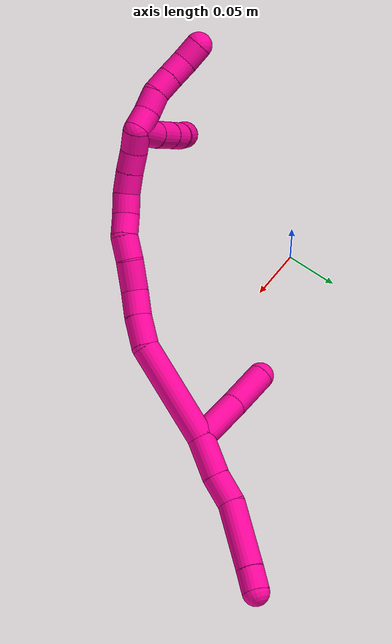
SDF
<sdf version="1.7">
 <world name="default">
  <model name="18">
   <static>0</static>
   <link name="18">
    <collision name="collision-cylinder-e_1_2_8">
     <pose>-0.00115 -0.002674 -0.018708 2.99964 -0.060769 -0.808</pose>
     <geometry><cylinder><radius>0.0125</radius><length>0.037866</length></cylinder></geometry>
     <surface>
      <friction><ode><mu>1.16</mu><mu2>1.16</mu2><slip1>0</slip1><slip2>0</slip2></ode></friction>
      <contact><ode><kp>1e+06</kp><kd>1</kd><max_vel>0</max_vel><min_depth>0.001</min_depth></ode></contact>
     </surface>
    </collision>
    <visual name="visual-cylinder-e_1_2_8">
     <pose>-0.00115 -0.002674 -0.018708 2.99964 -0.060769 -0.808</pose>
     <geometry><cylinder><radius>0.0125</radius><length>0.037866</length></cylinder></geometry>
     <material><ambient>1 0.007843 0.615686 1</ambient></material>
    </visual>
    <collision name="collision-cylinder-e_2_8_9">
     <pose>-0.00505 -0.006101 -0.051113 3.08658 -0.197869 -2.60085</pose>
     <geometry><cylinder><radius>0.0125</radius><length>0.027982</length></cylinder></geometry>
     <surface>
      <friction><ode><mu>1.16</mu><mu2>1.16</mu2><slip1>0</slip1><slip2>0</slip2></ode></friction>
      <contact><ode><kp>1e+06</kp><kd>1</kd><max_vel>0</max_vel><min_depth>0.001</min_depth></ode></contact>
     </surface>
    </collision>
    <visual name="visual-cylinder-e_2_8_9">
     <pose>-0.00505 -0.006101 -0.051113 3.08658 -0.197869 -2.60085</pose>
     <geometry><cylinder><radius>0.0125</radius><length>0.027982</length></cylinder></geometry>
     <material><ambient>1 0.007843 0.615686 1</ambient></material>
    </visual>
    <collision name="collision-cylinder-e_3_9_10">
     <pose>-0.005149 -0.00679 -0.095895 -3.13949 0.085092 -3.09219</pose>
     <geometry><cylinder><radius>0.0125</radius><length>0.062396</length></cylinder></geometry>
     <surface>
      <friction><ode><mu>1.16</mu><mu2>1.16</mu2><slip1>0</slip1><slip2>0</slip2></ode></friction>
      <contact><ode><kp>1e+06</kp><kd>1</kd><max_vel>0</max_vel><min_depth>0.001</min_depth></ode></contact>
     </surface>
    </collision>
    <visual name="visual-cylinder-e_3_9_10">
     <pose>-0.005149 -0.00679 -0.095895 -3.13949 0.085092 -3.09219</pose>
     <geometry><cylinder><radius>0.0125</radius><length>0.062396</length></cylinder></geometry>
     <material><ambient>1 0.007843 0.615686 1</ambient></material>
    </visual>
    <collision name="collision-cylinder-e_4_10_6">
     <pose>-0.001461 -0.006984 -0.137806 3.1176 0.095381 2.64904</pose>
     <geometry><cylinder><radius>0.0125</radius><length>0.021756</length></cylinder></geometry>
     <surface>
      <friction><ode><mu>1.16</mu><mu2>1.16</mu2><slip1>0</slip1><slip2>0</slip2></ode></friction>
      <contact><ode><kp>1e+06</kp><kd>1</kd><max_vel>0</max_vel><min_depth>0.001</min_depth></ode></contact>
     </surface>
    </collision>
    <visual name="visual-cylinder-e_4_10_6">
     <pose>-0.001461 -0.006984 -0.137806 3.1176 0.095381 2.64904</pose>
     <geometry><cylinder><radius>0.0125</radius><length>0.021756</length></cylinder></geometry>
     <material><ambient>1 0.007843 0.615686 1</ambient></material>
    </visual>
    <collision name="collision-cylinder-e_1_2_11">
     <pose>-0.022681 -0.00921 0.014032 0.580831 -0.933712 -0.299018</pose>
     <geometry><cylinder><radius>0.0125</radius><length>0.056432</length></cylinder></geometry>
     <surface>
      <friction><ode><mu>1.16</mu><mu2>1.16</mu2><slip1>0</slip1><slip2>0</slip2></ode></friction>
      <contact><ode><kp>1e+06</kp><kd>1</kd><max_vel>0</max_vel><min_depth>0.001</min_depth></ode></contact>
     </surface>
    </collision>
    <visual name="visual-cylinder-e_1_2_11">
     <pose>-0.022681 -0.00921 0.014032 0.580831 -0.933712 -0.299018</pose>
     <geometry><cylinder><radius>0.0125</radius><length>0.056432</length></cylinder></geometry>
     <material><ambient>1 0.007843 0.615686 1</ambient></material>
    </visual>
    <collision name="collision-cylinder-e_2_11_5">
     <pose>-0.063867 -0.020339 0.039395 0.167822 -1.01502 -0.093476</pose>
     <geometry><cylinder><radius>0.0125</radius><length>0.043568</length></cylinder></geometry>
     <surface>
      <friction><ode><mu>1.16</mu><mu2>1.16</mu2><slip1>0</slip1><slip2>0</slip2></ode></friction>
      <contact><ode><kp>1e+06</kp><kd>1</kd><max_vel>0</max_vel><min_depth>0.001</min_depth></ode></contact>
     </surface>
    </collision>
    <visual name="visual-cylinder-e_2_11_5">
     <pose>-0.063867 -0.020339 0.039395 0.167822 -1.01502 -0.093476</pose>
     <geometry><cylinder><radius>0.0125</radius><length>0.043568</length></cylinder></geometry>
     <material><ambient>1 0.007843 0.615686 1</ambient></material>
    </visual>
    <collision name="collision-cylinder-e_1_2_12">
     <pose>0.012545 0.008599 0.045321 -0.187511 0.265524 -0.025114</pose>
     <geometry><cylinder><radius>0.0125</radius><length>0.095611</length></cylinder></geometry>
     <surface>
      <friction><ode><mu>1.16</mu><mu2>1.16</mu2><slip1>0</slip1><slip2>0</slip2></ode></friction>
      <contact><ode><kp>1e+06</kp><kd>1</kd><max_vel>0</max_vel><min_depth>0.001</min_depth></ode></contact>
     </surface>
    </collision>
    <visual name="visual-cylinder-e_1_2_12">
     <pose>0.012545 0.008599 0.045321 -0.187511 0.265524 -0.025114</pose>
     <geometry><cylinder><radius>0.0125</radius><length>0.095611</length></cylinder></geometry>
     <material><ambient>1 0.007843 0.615686 1</ambient></material>
    </visual>
    <collision name="collision-cylinder-e_2_12_13">
     <pose>0.024 0.019189 0.104831 -0.139345 -0.075882 0.005298</pose>
     <geometry><cylinder><radius>0.0125</radius><length>0.028737</length></cylinder></geometry>
     <surface>
      <friction><ode><mu>1.16</mu><mu2>1.16</mu2><slip1>0</slip1><slip2>0</slip2></ode></friction>
      <contact><ode><kp>1e+06</kp><kd>1</kd><max_vel>0</max_vel><min_depth>0.001</min_depth></ode></contact>
     </surface>
    </collision>
    <visual name="visual-cylinder-e_2_12_13">
     <pose>0.024 0.019189 0.104831 -0.139345 -0.075882 0.005298</pose>
     <geometry><cylinder><radius>0.0125</radius><length>0.028737</length></cylinder></geometry>
     <material><ambient>1 0.007843 0.615686 1</ambient></material>
    </visual>
    <collision name="collision-cylinder-e_3_13_14">
     <pose>0.020959 0.023508 0.130741 -0.19616 -0.161882 0.015963</pose>
     <geometry><cylinder><radius>0.0125</radius><length>0.024219</length></cylinder></geometry>
     <surface>
      <friction><ode><mu>1.16</mu><mu2>1.16</mu2><slip1>0</slip1><slip2>0</slip2></ode></friction>
      <contact><ode><kp>1e+06</kp><kd>1</kd><max_vel>0</max_vel><min_depth>0.001</min_depth></ode></contact>
     </surface>
    </collision>
    <visual name="visual-cylinder-e_3_13_14">
     <pose>0.020959 0.023508 0.130741 -0.19616 -0.161882 0.015963</pose>
     <geometry><cylinder><radius>0.0125</radius><length>0.024219</length></cylinder></geometry>
     <material><ambient>1 0.007843 0.615686 1</ambient></material>
    </visual>
    <collision name="collision-cylinder-e_4_14_15">
     <pose>0.01824 0.03232 0.155127 -0.473147 -0.053911 0.013</pose>
     <geometry><cylinder><radius>0.0125</radius><length>0.028496</length></cylinder></geometry>
     <surface>
      <friction><ode><mu>1.16</mu><mu2>1.16</mu2><slip1>0</slip1><slip2>0</slip2></ode></friction>
      <contact><ode><kp>1e+06</kp><kd>1</kd><max_vel>0</max_vel><min_depth>0.001</min_depth></ode></contact>
     </surface>
    </collision>
    <visual name="visual-cylinder-e_4_14_15">
     <pose>0.01824 0.03232 0.155127 -0.473147 -0.053911 0.013</pose>
     <geometry><cylinder><radius>0.0125</radius><length>0.028496</length></cylinder></geometry>
     <material><ambient>1 0.007843 0.615686 1</ambient></material>
    </visual>
    <collision name="collision-cylinder-e_5_15_16">
     <pose>0.017001 0.042225 0.178504 -0.309163 -0.041902 0.00653</pose>
     <geometry><cylinder><radius>0.0125</radius><length>0.022511</length></cylinder></geometry>
     <surface>
      <friction><ode><mu>1.16</mu><mu2>1.16</mu2><slip1>0</slip1><slip2>0</slip2></ode></friction>
      <contact><ode><kp>1e+06</kp><kd>1</kd><max_vel>0</max_vel><min_depth>0.001</min_depth></ode></contact>
     </surface>
    </collision>
    <visual name="visual-cylinder-e_5_15_16">
     <pose>0.017001 0.042225 0.178504 -0.309163 -0.041902 0.00653</pose>
     <geometry><cylinder><radius>0.0125</radius><length>0.022511</length></cylinder></geometry>
     <material><ambient>1 0.007843 0.615686 1</ambient></material>
    </visual>
    <collision name="collision-cylinder-e_6_16_17">
     <pose>0.012916 0.04769 0.198504 -0.216578 -0.363106 0.039909</pose>
     <geometry><cylinder><radius>0.0125</radius><length>0.020346</length></cylinder></geometry>
     <surface>
      <friction><ode><mu>1.16</mu><mu2>1.16</mu2><slip1>0</slip1><slip2>0</slip2></ode></friction>
      <contact><ode><kp>1e+06</kp><kd>1</kd><max_vel>0</max_vel><min_depth>0.001</min_depth></ode></contact>
     </surface>
    </collision>
    <visual name="visual-cylinder-e_6_16_17">
     <pose>0.012916 0.04769 0.198504 -0.216578 -0.363106 0.039909</pose>
     <geometry><cylinder><radius>0.0125</radius><length>0.020346</length></cylinder></geometry>
     <material><ambient>1 0.007843 0.615686 1</ambient></material>
    </visual>
    <collision name="collision-cylinder-e_7_17_18">
     <pose>0.006688 0.05372 0.216598 -0.425062 -0.264127 0.057314</pose>
     <geometry><cylinder><radius>0.0125</radius><length>0.020028</length></cylinder></geometry>
     <surface>
      <friction><ode><mu>1.16</mu><mu2>1.16</mu2><slip1>0</slip1><slip2>0</slip2></ode></friction>
      <contact><ode><kp>1e+06</kp><kd>1</kd><max_vel>0</max_vel><min_depth>0.001</min_depth></ode></contact>
     </surface>
    </collision>
    <visual name="visual-cylinder-e_7_17_18">
     <pose>0.006688 0.05372 0.216598 -0.425062 -0.264127 0.057314</pose>
     <geometry><cylinder><radius>0.0125</radius><length>0.020028</length></cylinder></geometry>
     <material><ambient>1 0.007843 0.615686 1</ambient></material>
    </visual>
    <collision name="collision-cylinder-e_8_18_19">
     <pose>0.001275 0.064377 0.232315 -0.767773 -0.283598 0.115199</pose>
     <geometry><cylinder><radius>0.0125</radius><length>0.020008</length></cylinder></geometry>
     <surface>
      <friction><ode><mu>1.16</mu><mu2>1.16</mu2><slip1>0</slip1><slip2>0</slip2></ode></friction>
      <contact><ode><kp>1e+06</kp><kd>1</kd><max_vel>0</max_vel><min_depth>0.001</min_depth></ode></contact>
     </surface>
    </collision>
    <visual name="visual-cylinder-e_8_18_19">
     <pose>0.001275 0.064377 0.232315 -0.767773 -0.283598 0.115199</pose>
     <geometry><cylinder><radius>0.0125</radius><length>0.020008</length></cylinder></geometry>
     <material><ambient>1 0.007843 0.615686 1</ambient></material>
    </visual>
    <collision name="collision-cylinder-e_9_19_20">
     <pose>-0.004602 0.078145 0.245573 -0.841057 -0.312565 0.140698</pose>
     <geometry><cylinder><radius>0.0125</radius><length>0.020015</length></cylinder></geometry>
     <surface>
      <friction><ode><mu>1.16</mu><mu2>1.16</mu2><slip1>0</slip1><slip2>0</slip2></ode></friction>
      <contact><ode><kp>1e+06</kp><kd>1</kd><max_vel>0</max_vel><min_depth>0.001</min_depth></ode></contact>
     </surface>
    </collision>
    <visual name="visual-cylinder-e_9_19_20">
     <pose>-0.004602 0.078145 0.245573 -0.841057 -0.312565 0.140698</pose>
     <geometry><cylinder><radius>0.0125</radius><length>0.020015</length></cylinder></geometry>
     <material><ambient>1 0.007843 0.615686 1</ambient></material>
    </visual>
    <collision name="collision-cylinder-e_10_20_1">
     <pose>-0.009441 0.093422 0.257426 -0.978364 -0.176832 0.09431</pose>
     <geometry><cylinder><radius>0.0125</radius><length>0.020029</length></cylinder></geometry>
     <surface>
      <friction><ode><mu>1.16</mu><mu2>1.16</mu2><slip1>0</slip1><slip2>0</slip2></ode></friction>
      <contact><ode><kp>1e+06</kp><kd>1</kd><max_vel>0</max_vel><min_depth>0.001</min_depth></ode></contact>
     </surface>
    </collision>
    <visual name="visual-cylinder-e_10_20_1">
     <pose>-0.009441 0.093422 0.257426 -0.978364 -0.176832 0.09431</pose>
     <geometry><cylinder><radius>0.0125</radius><length>0.020029</length></cylinder></geometry>
     <material><ambient>1 0.007843 0.615686 1</ambient></material>
    </visual>
    <collision name="collision-cylinder-e_1_1_21">
     <pose>-0.018289 0.103104 0.269825 -0.214807 -0.78759 0.089537</pose>
     <geometry><cylinder><radius>0.0125</radius><length>0.02</length></cylinder></geometry>
     <surface>
      <friction><ode><mu>1.16</mu><mu2>1.16</mu2><slip1>0</slip1><slip2>0</slip2></ode></friction>
      <contact><ode><kp>1e+06</kp><kd>1</kd><max_vel>0</max_vel><min_depth>0.001</min_depth></ode></contact>
     </surface>
    </collision>
    <visual name="visual-cylinder-e_1_1_21">
     <pose>-0.018289 0.103104 0.269825 -0.214807 -0.78759 0.089537</pose>
     <geometry><cylinder><radius>0.0125</radius><length>0.02</length></cylinder></geometry>
     <material><ambient>1 0.007843 0.615686 1</ambient></material>
    </visual>
    <collision name="collision-cylinder-e_2_21_22">
     <pose>-0.031585 0.107677 0.283931 -0.402313 -0.669955 0.141726</pose>
     <geometry><cylinder><radius>0.0125</radius><length>0.02</length></cylinder></geometry>
     <surface>
      <friction><ode><mu>1.16</mu><mu2>1.16</mu2><slip1>0</slip1><slip2>0</slip2></ode></friction>
      <contact><ode><kp>1e+06</kp><kd>1</kd><max_vel>0</max_vel><min_depth>0.001</min_depth></ode></contact>
     </surface>
    </collision>
    <visual name="visual-cylinder-e_2_21_22">
     <pose>-0.031585 0.107677 0.283931 -0.402313 -0.669955 0.141726</pose>
     <geometry><cylinder><radius>0.0125</radius><length>0.02</length></cylinder></geometry>
     <material><ambient>1 0.007843 0.615686 1</ambient></material>
    </visual>
    <collision name="collision-cylinder-e_3_22_23">
     <pose>-0.04602 0.113108 0.296318 -0.42812 -0.965749 0.226963</pose>
     <geometry><cylinder><radius>0.0125</radius><length>0.02</length></cylinder></geometry>
     <surface>
      <friction><ode><mu>1.16</mu><mu2>1.16</mu2><slip1>0</slip1><slip2>0</slip2></ode></friction>
      <contact><ode><kp>1e+06</kp><kd>1</kd><max_vel>0</max_vel><min_depth>0.001</min_depth></ode></contact>
     </surface>
    </collision>
    <visual name="visual-cylinder-e_3_22_23">
     <pose>-0.04602 0.113108 0.296318 -0.42812 -0.965749 0.226963</pose>
     <geometry><cylinder><radius>0.0125</radius><length>0.02</length></cylinder></geometry>
     <material><ambient>1 0.007843 0.615686 1</ambient></material>
    </visual>
    <collision name="collision-cylinder-e_4_23_24">
     <pose>-0.062576 0.117991 0.306414 -0.473529 -0.984796 0.25746</pose>
     <geometry><cylinder><radius>0.0125</radius><length>0.02</length></cylinder></geometry>
     <surface>
      <friction><ode><mu>1.16</mu><mu2>1.16</mu2><slip1>0</slip1><slip2>0</slip2></ode></friction>
      <contact><ode><kp>1e+06</kp><kd>1</kd><max_vel>0</max_vel><min_depth>0.001</min_depth></ode></contact>
     </surface>
    </collision>
    <visual name="visual-cylinder-e_4_23_24">
     <pose>-0.062576 0.117991 0.306414 -0.473529 -0.984796 0.25746</pose>
     <geometry><cylinder><radius>0.0125</radius><length>0.02</length></cylinder></geometry>
     <material><ambient>1 0.007843 0.615686 1</ambient></material>
    </visual>
    <collision name="collision-cylinder-e_5_24_4">
     <pose>-0.078597 0.125195 0.315689 -0.821735 -0.877275 0.403201</pose>
     <geometry><cylinder><radius>0.0125</radius><length>0.02</length></cylinder></geometry>
     <surface>
      <friction><ode><mu>1.16</mu><mu2>1.16</mu2><slip1>0</slip1><slip2>0</slip2></ode></friction>
      <contact><ode><kp>1e+06</kp><kd>1</kd><max_vel>0</max_vel><min_depth>0.001</min_depth></ode></contact>
     </surface>
    </collision>
    <visual name="visual-cylinder-e_5_24_4">
     <pose>-0.078597 0.125195 0.315689 -0.821735 -0.877275 0.403201</pose>
     <geometry><cylinder><radius>0.0125</radius><length>0.02</length></cylinder></geometry>
     <material><ambient>1 0.007843 0.615686 1</ambient></material>
    </visual>
    <collision name="collision-cylinder-e_1_1_25">
     <pose>-0.022493 0.09048 0.264748 1.40887 -0.786444 -0.677905</pose>
     <geometry><cylinder><radius>0.0125</radius><length>0.031901</length></cylinder></geometry>
     <surface>
      <friction><ode><mu>1.16</mu><mu2>1.16</mu2><slip1>0</slip1><slip2>0</slip2></ode></friction>
      <contact><ode><kp>1e+06</kp><kd>1</kd><max_vel>0</max_vel><min_depth>0.001</min_depth></ode></contact>
     </surface>
    </collision>
    <visual name="visual-cylinder-e_1_1_25">
     <pose>-0.022493 0.09048 0.264748 1.40887 -0.786444 -0.677905</pose>
     <geometry><cylinder><radius>0.0125</radius><length>0.031901</length></cylinder></geometry>
     <material><ambient>1 0.007843 0.615686 1</ambient></material>
    </visual>
    <collision name="collision-cylinder-e_2_25_26">
     <pose>-0.043618 0.070172 0.269415 1.26996 -0.796366 -0.601072</pose>
     <geometry><cylinder><radius>0.0125</radius><length>0.027516</length></cylinder></geometry>
     <surface>
      <friction><ode><mu>1.16</mu><mu2>1.16</mu2><slip1>0</slip1><slip2>0</slip2></ode></friction>
      <contact><ode><kp>1e+06</kp><kd>1</kd><max_vel>0</max_vel><min_depth>0.001</min_depth></ode></contact>
     </surface>
    </collision>
    <visual name="visual-cylinder-e_2_25_26">
     <pose>-0.043618 0.070172 0.269415 1.26996 -0.796366 -0.601072</pose>
     <geometry><cylinder><radius>0.0125</radius><length>0.027516</length></cylinder></geometry>
     <material><ambient>1 0.007843 0.615686 1</ambient></material>
    </visual>
    <collision name="collision-cylinder-e_3_26_27">
     <pose>-0.060535 0.053979 0.274356 1.28084 -0.769649 -0.586246</pose>
     <geometry><cylinder><radius>0.0125</radius><length>0.020355</length></cylinder></geometry>
     <surface>
      <friction><ode><mu>1.16</mu><mu2>1.16</mu2><slip1>0</slip1><slip2>0</slip2></ode></friction>
      <contact><ode><kp>1e+06</kp><kd>1</kd><max_vel>0</max_vel><min_depth>0.001</min_depth></ode></contact>
     </surface>
    </collision>
    <visual name="visual-cylinder-e_3_26_27">
     <pose>-0.060535 0.053979 0.274356 1.28084 -0.769649 -0.586246</pose>
     <geometry><cylinder><radius>0.0125</radius><length>0.020355</length></cylinder></geometry>
     <material><ambient>1 0.007843 0.615686 1</ambient></material>
    </visual>
    <collision name="collision-cylinder-e_4_27_3">
     <pose>-0.073265 0.039491 0.280239 1.10166 -0.592395 -0.370606</pose>
     <geometry><cylinder><radius>0.0125</radius><length>0.020227</length></cylinder></geometry>
     <surface>
      <friction><ode><mu>1.16</mu><mu2>1.16</mu2><slip1>0</slip1><slip2>0</slip2></ode></friction>
      <contact><ode><kp>1e+06</kp><kd>1</kd><max_vel>0</max_vel><min_depth>0.001</min_depth></ode></contact>
     </surface>
    </collision>
    <visual name="visual-cylinder-e_4_27_3">
     <pose>-0.073265 0.039491 0.280239 1.10166 -0.592395 -0.370606</pose>
     <geometry><cylinder><radius>0.0125</radius><length>0.020227</length></cylinder></geometry>
     <material><ambient>1 0.007843 0.615686 1</ambient></material>
    </visual>
    <collision name="collision-sphere-3">
     <pose>-0.078912 0.032007 0.284033 0 -0 0</pose>
     <geometry><sphere><radius>0.0125</radius></sphere></geometry>
     <surface>
      <friction><ode><mu>1.16</mu><mu2>1.16</mu2><slip1>0</slip1><slip2>0</slip2></ode></friction>
      <contact><ode><kp>1e+06</kp><kd>1</kd><max_vel>0</max_vel><min_depth>0.001</min_depth></ode></contact>
     </surface>
    </collision>
    <visual name="visual-sphere-3">
     <pose>-0.078912 0.032007 0.284033 0 -0 0</pose>
     <geometry><sphere><radius>0.0125</radius></sphere></geometry>
     <material><ambient>1 0.007843 0.615686 1</ambient></material>
    </visual>
    <collision name="collision-sphere-27">
     <pose>-0.067618 0.046975 0.276446 0 -0 0</pose>
     <geometry><sphere><radius>0.0125</radius></sphere></geometry>
     <surface>
      <friction><ode><mu>1.16</mu><mu2>1.16</mu2><slip1>0</slip1><slip2>0</slip2></ode></friction>
      <contact><ode><kp>1e+06</kp><kd>1</kd><max_vel>0</max_vel><min_depth>0.001</min_depth></ode></contact>
     </surface>
    </collision>
    <visual name="visual-sphere-27">
     <pose>-0.067618 0.046975 0.276446 0 -0 0</pose>
     <geometry><sphere><radius>0.0125</radius></sphere></geometry>
     <material><ambient>1 0.007843 0.615686 1</ambient></material>
    </visual>
    <collision name="collision-sphere-26">
     <pose>-0.053453 0.060983 0.272266 0 -0 0</pose>
     <geometry><sphere><radius>0.0125</radius></sphere></geometry>
     <surface>
      <friction><ode><mu>1.16</mu><mu2>1.16</mu2><slip1>0</slip1><slip2>0</slip2></ode></friction>
      <contact><ode><kp>1e+06</kp><kd>1</kd><max_vel>0</max_vel><min_depth>0.001</min_depth></ode></contact>
     </surface>
    </collision>
    <visual name="visual-sphere-26">
     <pose>-0.053453 0.060983 0.272266 0 -0 0</pose>
     <geometry><sphere><radius>0.0125</radius></sphere></geometry>
     <material><ambient>1 0.007843 0.615686 1</ambient></material>
    </visual>
    <collision name="collision-sphere-25">
     <pose>-0.033784 0.079361 0.266564 0 -0 0</pose>
     <geometry><sphere><radius>0.0125</radius></sphere></geometry>
     <surface>
      <friction><ode><mu>1.16</mu><mu2>1.16</mu2><slip1>0</slip1><slip2>0</slip2></ode></friction>
      <contact><ode><kp>1e+06</kp><kd>1</kd><max_vel>0</max_vel><min_depth>0.001</min_depth></ode></contact>
     </surface>
    </collision>
    <visual name="visual-sphere-25">
     <pose>-0.033784 0.079361 0.266564 0 -0 0</pose>
     <geometry><sphere><radius>0.0125</radius></sphere></geometry>
     <material><ambient>1 0.007843 0.615686 1</ambient></material>
    </visual>
    <collision name="collision-sphere-4">
     <pose>-0.086287 0.129876 0.320042 0 -0 0</pose>
     <geometry><sphere><radius>0.0125</radius></sphere></geometry>
     <surface>
      <friction><ode><mu>1.16</mu><mu2>1.16</mu2><slip1>0</slip1><slip2>0</slip2></ode></friction>
      <contact><ode><kp>1e+06</kp><kd>1</kd><max_vel>0</max_vel><min_depth>0.001</min_depth></ode></contact>
     </surface>
    </collision>
    <visual name="visual-sphere-4">
     <pose>-0.086287 0.129876 0.320042 0 -0 0</pose>
     <geometry><sphere><radius>0.0125</radius></sphere></geometry>
     <material><ambient>1 0.007843 0.615686 1</ambient></material>
    </visual>
    <collision name="collision-sphere-24">
     <pose>-0.070907 0.120513 0.311336 0 -0 0</pose>
     <geometry><sphere><radius>0.0125</radius></sphere></geometry>
     <surface>
      <friction><ode><mu>1.16</mu><mu2>1.16</mu2><slip1>0</slip1><slip2>0</slip2></ode></friction>
      <contact><ode><kp>1e+06</kp><kd>1</kd><max_vel>0</max_vel><min_depth>0.001</min_depth></ode></contact>
     </surface>
    </collision>
    <visual name="visual-sphere-24">
     <pose>-0.070907 0.120513 0.311336 0 -0 0</pose>
     <geometry><sphere><radius>0.0125</radius></sphere></geometry>
     <material><ambient>1 0.007843 0.615686 1</ambient></material>
    </visual>
    <collision name="collision-sphere-23">
     <pose>-0.054244 0.115469 0.301493 0 -0 0</pose>
     <geometry><sphere><radius>0.0125</radius></sphere></geometry>
     <surface>
      <friction><ode><mu>1.16</mu><mu2>1.16</mu2><slip1>0</slip1><slip2>0</slip2></ode></friction>
      <contact><ode><kp>1e+06</kp><kd>1</kd><max_vel>0</max_vel><min_depth>0.001</min_depth></ode></contact>
     </surface>
    </collision>
    <visual name="visual-sphere-23">
     <pose>-0.054244 0.115469 0.301493 0 -0 0</pose>
     <geometry><sphere><radius>0.0125</radius></sphere></geometry>
     <material><ambient>1 0.007843 0.615686 1</ambient></material>
    </visual>
    <collision name="collision-sphere-22">
     <pose>-0.037795 0.110746 0.291143 0 -0 0</pose>
     <geometry><sphere><radius>0.0125</radius></sphere></geometry>
     <surface>
      <friction><ode><mu>1.16</mu><mu2>1.16</mu2><slip1>0</slip1><slip2>0</slip2></ode></friction>
      <contact><ode><kp>1e+06</kp><kd>1</kd><max_vel>0</max_vel><min_depth>0.001</min_depth></ode></contact>
     </surface>
    </collision>
    <visual name="visual-sphere-22">
     <pose>-0.037795 0.110746 0.291143 0 -0 0</pose>
     <geometry><sphere><radius>0.0125</radius></sphere></geometry>
     <material><ambient>1 0.007843 0.615686 1</ambient></material>
    </visual>
    <collision name="collision-sphere-21">
     <pose>-0.025376 0.104608 0.276718 0 -0 0</pose>
     <geometry><sphere><radius>0.0125</radius></sphere></geometry>
     <surface>
      <friction><ode><mu>1.16</mu><mu2>1.16</mu2><slip1>0</slip1><slip2>0</slip2></ode></friction>
      <contact><ode><kp>1e+06</kp><kd>1</kd><max_vel>0</max_vel><min_depth>0.001</min_depth></ode></contact>
     </surface>
    </collision>
    <visual name="visual-sphere-21">
     <pose>-0.025376 0.104608 0.276718 0 -0 0</pose>
     <geometry><sphere><radius>0.0125</radius></sphere></geometry>
     <material><ambient>1 0.007843 0.615686 1</ambient></material>
    </visual>
    <collision name="collision-sphere-1">
     <pose>-0.011203 0.1016 0.262931 0 -0 0</pose>
     <geometry><sphere><radius>0.0125</radius></sphere></geometry>
     <surface>
      <friction><ode><mu>1.16</mu><mu2>1.16</mu2><slip1>0</slip1><slip2>0</slip2></ode></friction>
      <contact><ode><kp>1e+06</kp><kd>1</kd><max_vel>0</max_vel><min_depth>0.001</min_depth></ode></contact>
     </surface>
    </collision>
    <visual name="visual-sphere-1">
     <pose>-0.011203 0.1016 0.262931 0 -0 0</pose>
     <geometry><sphere><radius>0.0125</radius></sphere></geometry>
     <material><ambient>1 0.007843 0.615686 1</ambient></material>
    </visual>
    <collision name="collision-sphere-11">
     <pose>-0.045362 -0.01842 0.028064 0 -0 0</pose>
     <geometry><sphere><radius>0.0125</radius></sphere></geometry>
     <surface>
      <friction><ode><mu>1.16</mu><mu2>1.16</mu2><slip1>0</slip1><slip2>0</slip2></ode></friction>
      <contact><ode><kp>1e+06</kp><kd>1</kd><max_vel>0</max_vel><min_depth>0.001</min_depth></ode></contact>
     </surface>
    </collision>
    <visual name="visual-sphere-11">
     <pose>-0.045362 -0.01842 0.028064 0 -0 0</pose>
     <geometry><sphere><radius>0.0125</radius></sphere></geometry>
     <material><ambient>1 0.007843 0.615686 1</ambient></material>
    </visual>
    <collision name="collision-sphere-6">
     <pose>-0.000425 -0.007244 -0.148631 0 -0 0</pose>
     <geometry><sphere><radius>0.0125</radius></sphere></geometry>
     <surface>
      <friction><ode><mu>1.16</mu><mu2>1.16</mu2><slip1>0</slip1><slip2>0</slip2></ode></friction>
      <contact><ode><kp>1e+06</kp><kd>1</kd><max_vel>0</max_vel><min_depth>0.001</min_depth></ode></contact>
     </surface>
    </collision>
    <visual name="visual-sphere-6">
     <pose>-0.000425 -0.007244 -0.148631 0 -0 0</pose>
     <geometry><sphere><radius>0.0125</radius></sphere></geometry>
     <material><ambient>1 0.007843 0.615686 1</ambient></material>
    </visual>
    <collision name="collision-sphere-10">
     <pose>-0.002497 -0.006725 -0.12698 0 -0 0</pose>
     <geometry><sphere><radius>0.0125</radius></sphere></geometry>
     <surface>
      <friction><ode><mu>1.16</mu><mu2>1.16</mu2><slip1>0</slip1><slip2>0</slip2></ode></friction>
      <contact><ode><kp>1e+06</kp><kd>1</kd><max_vel>0</max_vel><min_depth>0.001</min_depth></ode></contact>
     </surface>
    </collision>
    <visual name="visual-sphere-10">
     <pose>-0.002497 -0.006725 -0.12698 0 -0 0</pose>
     <geometry><sphere><radius>0.0125</radius></sphere></geometry>
     <material><ambient>1 0.007843 0.615686 1</ambient></material>
    </visual>
    <collision name="collision-sphere-9">
     <pose>-0.0078 -0.006855 -0.06481 0 -0 0</pose>
     <geometry><sphere><radius>0.0125</radius></sphere></geometry>
     <surface>
      <friction><ode><mu>1.16</mu><mu2>1.16</mu2><slip1>0</slip1><slip2>0</slip2></ode></friction>
      <contact><ode><kp>1e+06</kp><kd>1</kd><max_vel>0</max_vel><min_depth>0.001</min_depth></ode></contact>
     </surface>
    </collision>
    <visual name="visual-sphere-9">
     <pose>-0.0078 -0.006855 -0.06481 0 -0 0</pose>
     <geometry><sphere><radius>0.0125</radius></sphere></geometry>
     <material><ambient>1 0.007843 0.615686 1</ambient></material>
    </visual>
    <collision name="collision-sphere-2">
     <geometry><sphere><radius>0.0125</radius></sphere></geometry>
     <surface>
      <friction><ode><mu>1.16</mu><mu2>1.16</mu2><slip1>0</slip1><slip2>0</slip2></ode></friction>
      <contact><ode><kp>1e+06</kp><kd>1</kd><max_vel>0</max_vel><min_depth>0.001</min_depth></ode></contact>
     </surface>
    </collision>
    <visual name="visual-sphere-2">
     <geometry><sphere><radius>0.0125</radius></sphere></geometry>
     <material><ambient>1 0.007843 0.615686 1</ambient></material>
    </visual>
    <collision name="collision-sphere-19">
     <pose>-0.001525 0.071048 0.239225 0 -0 0</pose>
     <geometry><sphere><radius>0.0125</radius></sphere></geometry>
     <surface>
      <friction><ode><mu>1.16</mu><mu2>1.16</mu2><slip1>0</slip1><slip2>0</slip2></ode></friction>
      <contact><ode><kp>1e+06</kp><kd>1</kd><max_vel>0</max_vel><min_depth>0.001</min_depth></ode></contact>
     </surface>
    </collision>
    <visual name="visual-sphere-19">
     <pose>-0.001525 0.071048 0.239225 0 -0 0</pose>
     <geometry><sphere><radius>0.0125</radius></sphere></geometry>
     <material><ambient>1 0.007843 0.615686 1</ambient></material>
    </visual>
    <collision name="collision-sphere-8">
     <pose>-0.0023 -0.005347 -0.037415 0 -0 0</pose>
     <geometry><sphere><radius>0.0125</radius></sphere></geometry>
     <surface>
      <friction><ode><mu>1.16</mu><mu2>1.16</mu2><slip1>0</slip1><slip2>0</slip2></ode></friction>
      <contact><ode><kp>1e+06</kp><kd>1</kd><max_vel>0</max_vel><min_depth>0.001</min_depth></ode></contact>
     </surface>
    </collision>
    <visual name="visual-sphere-8">
     <pose>-0.0023 -0.005347 -0.037415 0 -0 0</pose>
     <geometry><sphere><radius>0.0125</radius></sphere></geometry>
     <material><ambient>1 0.007843 0.615686 1</ambient></material>
    </visual>
    <collision name="collision-sphere-5">
     <pose>-0.082373 -0.022259 0.050727 0 -0 0</pose>
     <geometry><sphere><radius>0.0125</radius></sphere></geometry>
     <surface>
      <friction><ode><mu>1.16</mu><mu2>1.16</mu2><slip1>0</slip1><slip2>0</slip2></ode></friction>
      <contact><ode><kp>1e+06</kp><kd>1</kd><max_vel>0</max_vel><min_depth>0.001</min_depth></ode></contact>
     </surface>
    </collision>
    <visual name="visual-sphere-5">
     <pose>-0.082373 -0.022259 0.050727 0 -0 0</pose>
     <geometry><sphere><radius>0.0125</radius></sphere></geometry>
     <material><ambient>1 0.007843 0.615686 1</ambient></material>
    </visual>
    <collision name="collision-sphere-12">
     <pose>0.02509 0.017199 0.090643 0 -0 0</pose>
     <geometry><sphere><radius>0.0125</radius></sphere></geometry>
     <surface>
      <friction><ode><mu>1.16</mu><mu2>1.16</mu2><slip1>0</slip1><slip2>0</slip2></ode></friction>
      <contact><ode><kp>1e+06</kp><kd>1</kd><max_vel>0</max_vel><min_depth>0.001</min_depth></ode></contact>
     </surface>
    </collision>
    <visual name="visual-sphere-12">
     <pose>0.02509 0.017199 0.090643 0 -0 0</pose>
     <geometry><sphere><radius>0.0125</radius></sphere></geometry>
     <material><ambient>1 0.007843 0.615686 1</ambient></material>
    </visual>
    <collision name="collision-sphere-13">
     <pose>0.022911 0.021178 0.119019 0 -0 0</pose>
     <geometry><sphere><radius>0.0125</radius></sphere></geometry>
     <surface>
      <friction><ode><mu>1.16</mu><mu2>1.16</mu2><slip1>0</slip1><slip2>0</slip2></ode></friction>
      <contact><ode><kp>1e+06</kp><kd>1</kd><max_vel>0</max_vel><min_depth>0.001</min_depth></ode></contact>
     </surface>
    </collision>
    <visual name="visual-sphere-13">
     <pose>0.022911 0.021178 0.119019 0 -0 0</pose>
     <geometry><sphere><radius>0.0125</radius></sphere></geometry>
     <material><ambient>1 0.007843 0.615686 1</ambient></material>
    </visual>
    <collision name="collision-sphere-14">
     <pose>0.019008 0.025837 0.142463 0 -0 0</pose>
     <geometry><sphere><radius>0.0125</radius></sphere></geometry>
     <surface>
      <friction><ode><mu>1.16</mu><mu2>1.16</mu2><slip1>0</slip1><slip2>0</slip2></ode></friction>
      <contact><ode><kp>1e+06</kp><kd>1</kd><max_vel>0</max_vel><min_depth>0.001</min_depth></ode></contact>
     </surface>
    </collision>
    <visual name="visual-sphere-14">
     <pose>0.019008 0.025837 0.142463 0 -0 0</pose>
     <geometry><sphere><radius>0.0125</radius></sphere></geometry>
     <material><ambient>1 0.007843 0.615686 1</ambient></material>
    </visual>
    <collision name="collision-sphere-15">
     <pose>0.017472 0.038803 0.167791 0 -0 0</pose>
     <geometry><sphere><radius>0.0125</radius></sphere></geometry>
     <surface>
      <friction><ode><mu>1.16</mu><mu2>1.16</mu2><slip1>0</slip1><slip2>0</slip2></ode></friction>
      <contact><ode><kp>1e+06</kp><kd>1</kd><max_vel>0</max_vel><min_depth>0.001</min_depth></ode></contact>
     </surface>
    </collision>
    <visual name="visual-sphere-15">
     <pose>0.017472 0.038803 0.167791 0 -0 0</pose>
     <geometry><sphere><radius>0.0125</radius></sphere></geometry>
     <material><ambient>1 0.007843 0.615686 1</ambient></material>
    </visual>
    <collision name="collision-sphere-16">
     <pose>0.016529 0.045647 0.189216 0 -0 0</pose>
     <geometry><sphere><radius>0.0125</radius></sphere></geometry>
     <surface>
      <friction><ode><mu>1.16</mu><mu2>1.16</mu2><slip1>0</slip1><slip2>0</slip2></ode></friction>
      <contact><ode><kp>1e+06</kp><kd>1</kd><max_vel>0</max_vel><min_depth>0.001</min_depth></ode></contact>
     </surface>
    </collision>
    <visual name="visual-sphere-16">
     <pose>0.016529 0.045647 0.189216 0 -0 0</pose>
     <geometry><sphere><radius>0.0125</radius></sphere></geometry>
     <material><ambient>1 0.007843 0.615686 1</ambient></material>
    </visual>
    <collision name="collision-sphere-17">
     <pose>0.009303 0.049734 0.207791 0 -0 0</pose>
     <geometry><sphere><radius>0.0125</radius></sphere></geometry>
     <surface>
      <friction><ode><mu>1.16</mu><mu2>1.16</mu2><slip1>0</slip1><slip2>0</slip2></ode></friction>
      <contact><ode><kp>1e+06</kp><kd>1</kd><max_vel>0</max_vel><min_depth>0.001</min_depth></ode></contact>
     </surface>
    </collision>
    <visual name="visual-sphere-17">
     <pose>0.009303 0.049734 0.207791 0 -0 0</pose>
     <geometry><sphere><radius>0.0125</radius></sphere></geometry>
     <material><ambient>1 0.007843 0.615686 1</ambient></material>
    </visual>
    <collision name="collision-sphere-18">
     <pose>0.004074 0.057706 0.225405 0 -0 0</pose>
     <geometry><sphere><radius>0.0125</radius></sphere></geometry>
     <surface>
      <friction><ode><mu>1.16</mu><mu2>1.16</mu2><slip1>0</slip1><slip2>0</slip2></ode></friction>
      <contact><ode><kp>1e+06</kp><kd>1</kd><max_vel>0</max_vel><min_depth>0.001</min_depth></ode></contact>
     </surface>
    </collision>
    <visual name="visual-sphere-18">
     <pose>0.004074 0.057706 0.225405 0 -0 0</pose>
     <geometry><sphere><radius>0.0125</radius></sphere></geometry>
     <material><ambient>1 0.007843 0.615686 1</ambient></material>
    </visual>
    <collision name="collision-sphere-20">
     <pose>-0.007679 0.085243 0.251922 0 -0 0</pose>
     <geometry><sphere><radius>0.0125</radius></sphere></geometry>
     <surface>
      <friction><ode><mu>1.16</mu><mu2>1.16</mu2><slip1>0</slip1><slip2>0</slip2></ode></friction>
      <contact><ode><kp>1e+06</kp><kd>1</kd><max_vel>0</max_vel><min_depth>0.001</min_depth></ode></contact>
     </surface>
    </collision>
    <visual name="visual-sphere-20">
     <pose>-0.007679 0.085243 0.251922 0 -0 0</pose>
     <geometry><sphere><radius>0.0125</radius></sphere></geometry>
     <material><ambient>1 0.007843 0.615686 1</ambient></material>
    </visual>
    <inertial>
     <pose>-0.014045 0.035182 0.119988 0 -0 0</pose>
     <mass>0.75</mass>
     <inertia><ixx>6.1e-05</ixx><ixy>0</ixy><ixz>0</ixz><iyy>0.000139</iyy><iyz>0</iyz><izz>2.5e-05</izz></inertia>
    </inertial>
   </link>
   <pose>0.222719 0.061597 0.039207 1.42978 -0.15888 -0.556372</pose>
  </model>
 </world>
</sdf>
